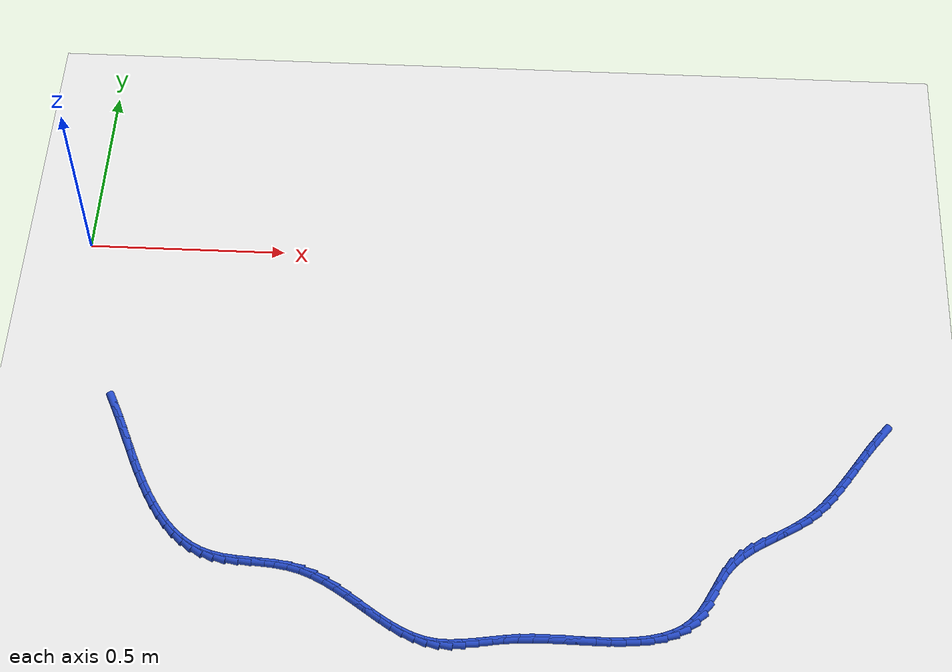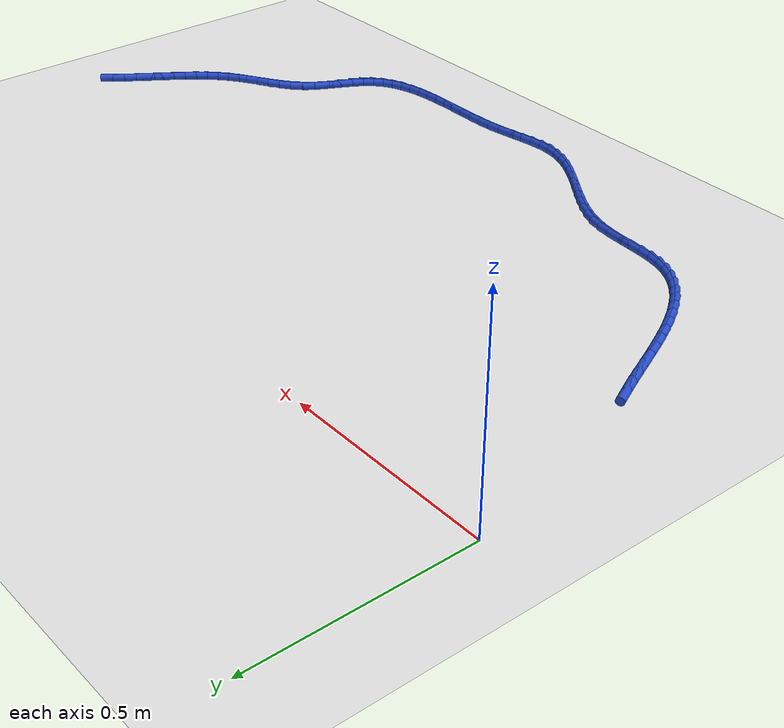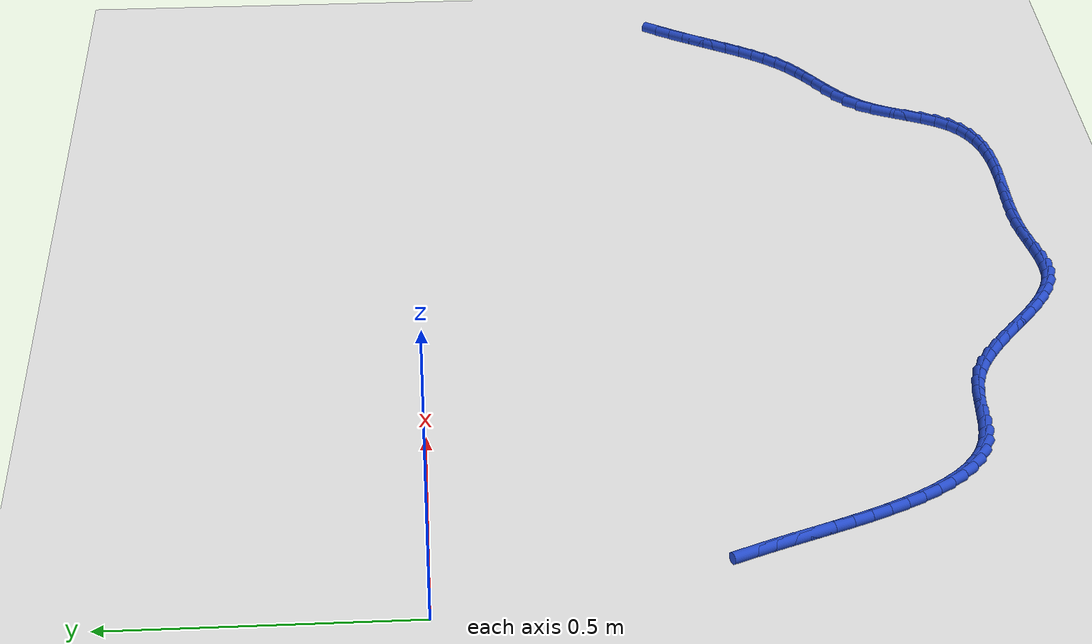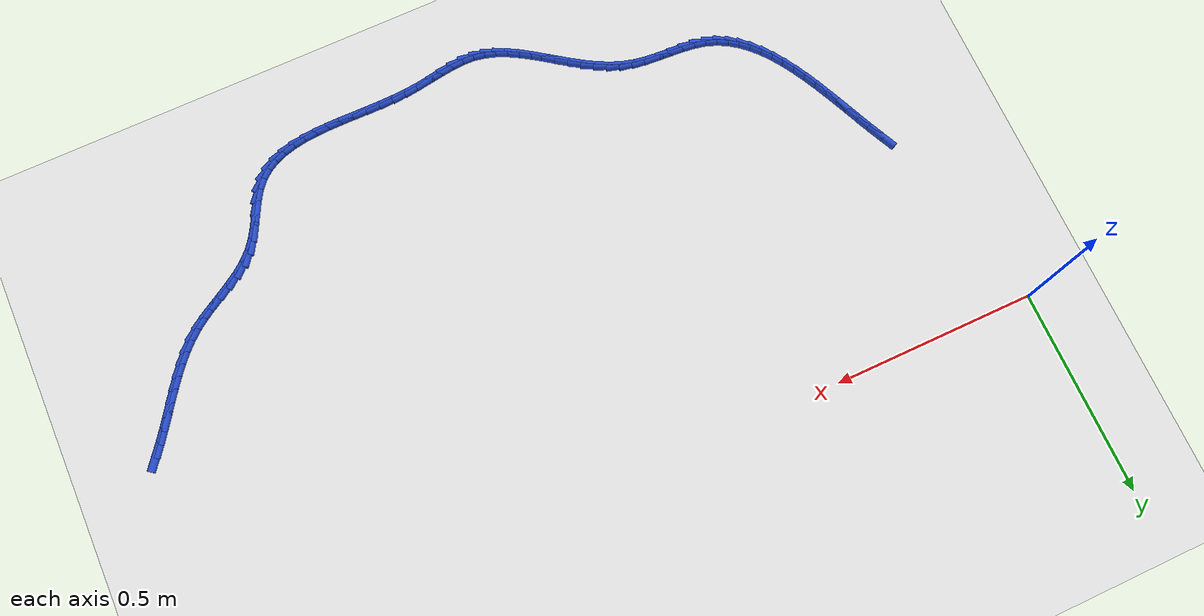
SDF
<sdf version="1.6">
 <world name="default">
  <model name="ground_plane">
   <static>1</static>
   <link name="link">
    <collision name="collision">
     <geometry><plane><normal>0 0 1</normal><size>100 100</size></plane></geometry>
     <surface><friction><ode><mu>100</mu><mu2>50</mu2></ode></friction></surface>
    </collision>
    <visual name="visual">
     <cast_shadows>0</cast_shadows>
     <geometry><plane><normal>0 0 1</normal><size>100 100</size></plane></geometry>
     <material>
      <script><uri>file://media/materials/scripts/gazebo.material</uri><name>Gazebo/WhiteGlow</name></script>
     </material>
    </visual>
   </link>
  </model>
  <model name="line">
   <link name="link_136">
    <pose>1.9928041549388718 -0.5000983421705477 0.01 0 1.57 0.9288535425664065</pose>
    <collision name="collision">
     <geometry><cylinder><radius>0.01</radius><length>0.08</length></cylinder></geometry>
    </collision>
    <visual name="visual">
     <material>
      <script><name>Gazebo/Blue</name><uri>file://media/materials/scripts/gazebo.material</uri></script>
     </material>
     <geometry><cylinder><radius>0.01</radius><length>0.08</length></cylinder></geometry>
    </visual>
   </link>
   <link name="link_137">
    <pose>1.9736009475559197 -0.5257859163488334 0.01 0 1.57 0.9602608134113997</pose>
    <collision name="collision">
     <geometry><cylinder><radius>0.01</radius><length>0.08</length></cylinder></geometry>
    </collision>
    <visual name="visual">
     <material>
      <script><name>Gazebo/Blue</name><uri>file://media/materials/scripts/gazebo.material</uri></script>
     </material>
     <geometry><cylinder><radius>0.01</radius><length>0.08</length></cylinder></geometry>
    </visual>
   </link>
   <link name="link_138">
    <pose>1.9554668538914555 -0.5517022692338159 0.01 0 1.57 0.9791331282496994</pose>
    <collision name="collision">
     <geometry><cylinder><radius>0.01</radius><length>0.08</length></cylinder></geometry>
    </collision>
    <visual name="visual">
     <material>
      <script><name>Gazebo/Blue</name><uri>file://media/materials/scripts/gazebo.material</uri></script>
     </material>
     <geometry><cylinder><radius>0.01</radius><length>0.08</length></cylinder></geometry>
    </visual>
   </link>
   <link name="link_139">
    <pose>1.9380492914748948 -0.5776225279422456 0.01 0 1.57 0.9849315929364691</pose>
    <collision name="collision">
     <geometry><cylinder><radius>0.01</radius><length>0.08</length></cylinder></geometry>
    </collision>
    <visual name="visual">
     <material>
      <script><name>Gazebo/Blue</name><uri>file://media/materials/scripts/gazebo.material</uri></script>
     </material>
     <geometry><cylinder><radius>0.01</radius><length>0.08</length></cylinder></geometry>
    </visual>
   </link>
   <link name="link_140">
    <pose>1.9209956778356505 -0.6033218195908734 0.01 0 1.57 0.9771509278971622</pose>
    <collision name="collision">
     <geometry><cylinder><radius>0.01</radius><length>0.08</length></cylinder></geometry>
    </collision>
    <visual name="visual">
     <material>
      <script><name>Gazebo/Blue</name><uri>file://media/materials/scripts/gazebo.material</uri></script>
     </material>
     <geometry><cylinder><radius>0.01</radius><length>0.08</length></cylinder></geometry>
    </visual>
   </link>
   <link name="link_141">
    <pose>1.9039534305031371 -0.6285752712964479 0.01 0 1.57 0.9552937803899582</pose>
    <collision name="collision">
     <geometry><cylinder><radius>0.01</radius><length>0.08</length></cylinder></geometry>
    </collision>
    <visual name="visual">
     <material>
      <script><name>Gazebo/Blue</name><uri>file://media/materials/scripts/gazebo.material</uri></script>
     </material>
     <geometry><cylinder><radius>0.01</radius><length>0.08</length></cylinder></geometry>
    </visual>
   </link>
   <link name="link_142">
    <pose>1.8865699670067686 -0.6531580101757198 0.01 0 1.57 0.9189212314913542</pose>
    <collision name="collision">
     <geometry><cylinder><radius>0.01</radius><length>0.08</length></cylinder></geometry>
    </collision>
    <visual name="visual">
     <material>
      <script><name>Gazebo/Blue</name><uri>file://media/materials/scripts/gazebo.material</uri></script>
     </material>
     <geometry><cylinder><radius>0.01</radius><length>0.08</length></cylinder></geometry>
    </visual>
   </link>
   <link name="link_143">
    <pose>1.8684927048759579 -0.6768451633454394 0.01 0 1.57 0.867797482358352</pose>
    <collision name="collision">
     <geometry><cylinder><radius>0.01</radius><length>0.08</length></cylinder></geometry>
    </collision>
    <visual name="visual">
     <material>
      <script><name>Gazebo/Blue</name><uri>file://media/materials/scripts/gazebo.material</uri></script>
     </material>
     <geometry><cylinder><radius>0.01</radius><length>0.08</length></cylinder></geometry>
    </visual>
   </link>
   <link name="link_144">
    <pose>1.8493690616401202 -0.6994118579223576 0.01 0 1.57 0.8021356955162451</pose>
    <collision name="collision">
     <geometry><cylinder><radius>0.01</radius><length>0.08</length></cylinder></geometry>
    </collision>
    <visual name="visual">
     <material>
      <script><name>Gazebo/Blue</name><uri>file://media/materials/scripts/gazebo.material</uri></script>
     </material>
     <geometry><cylinder><radius>0.01</radius><length>0.08</length></cylinder></geometry>
    </visual>
   </link>
   <link name="link_145">
    <pose>1.8288464548286694 -0.7206332210232231 0.01 0 1.57 0.7229161034929432</pose>
    <collision name="collision">
     <geometry><cylinder><radius>0.01</radius><length>0.08</length></cylinder></geometry>
    </collision>
    <visual name="visual">
     <material>
      <script><name>Gazebo/Blue</name><uri>file://media/materials/scripts/gazebo.material</uri></script>
     </material>
     <geometry><cylinder><radius>0.01</radius><length>0.08</length></cylinder></geometry>
    </visual>
   </link>
   <link name="link_146">
    <pose>1.8065723019710183 -0.7402843797647867 0.01 0 1.57 0.6355278843884544</pose>
    <collision name="collision">
     <geometry><cylinder><radius>0.01</radius><length>0.08</length></cylinder></geometry>
    </collision>
    <visual name="visual">
     <material>
      <script><name>Gazebo/Blue</name><uri>file://media/materials/scripts/gazebo.material</uri></script>
     </material>
     <geometry><cylinder><radius>0.01</radius><length>0.08</length></cylinder></geometry>
    </visual>
   </link>
   <link name="link_147">
    <pose>1.782273492528686 -0.7582075614470135 0.01 0 1.57 0.5714710603352663</pose>
    <collision name="collision">
     <geometry><cylinder><radius>0.01</radius><length>0.08</length></cylinder></geometry>
    </collision>
    <visual name="visual">
     <material>
      <script><name>Gazebo/Blue</name><uri>file://media/materials/scripts/gazebo.material</uri></script>
     </material>
     <geometry><cylinder><radius>0.01</radius><length>0.08</length></cylinder></geometry>
    </visual>
   </link>
   <link name="link_148">
    <pose>1.7563932055761489 -0.7748497749951807 0.01 0 1.57 0.5444184509288275</pose>
    <collision name="collision">
     <geometry><cylinder><radius>0.01</radius><length>0.08</length></cylinder></geometry>
    </collision>
    <visual name="visual">
     <material>
      <script><name>Gazebo/Blue</name><uri>file://media/materials/scripts/gazebo.material</uri></script>
     </material>
     <geometry><cylinder><radius>0.01</radius><length>0.08</length></cylinder></geometry>
    </visual>
   </link>
   <link name="link_149">
    <pose>1.7297541223830861 -0.7909784527363128 0.01 0 1.57 0.5525735734493316</pose>
    <collision name="collision">
     <geometry><cylinder><radius>0.01</radius><length>0.08</length></cylinder></geometry>
    </collision>
    <visual name="visual">
     <material>
      <script><name>Gazebo/Blue</name><uri>file://media/materials/scripts/gazebo.material</uri></script>
     </material>
     <geometry><cylinder><radius>0.01</radius><length>0.08</length></cylinder></geometry>
    </visual>
   </link>
   <link name="link_150">
    <pose>1.7031823940212656 -0.8073639566400148 0.01 0 1.57 0.5958839957332672</pose>
    <collision name="collision">
     <geometry><cylinder><radius>0.01</radius><length>0.08</length></cylinder></geometry>
    </collision>
    <visual name="visual">
     <material>
      <script><name>Gazebo/Blue</name><uri>file://media/materials/scripts/gazebo.material</uri></script>
     </material>
     <geometry><cylinder><radius>0.01</radius><length>0.08</length></cylinder></geometry>
    </visual>
   </link>
   <link name="link_151">
    <pose>1.677504171562459 -0.8247766486758924 0.01 0 1.57 0.6758442554312032</pose>
    <collision name="collision">
     <geometry><cylinder><radius>0.01</radius><length>0.08</length></cylinder></geometry>
    </collision>
    <visual name="visual">
     <material>
      <script><name>Gazebo/Blue</name><uri>file://media/materials/scripts/gazebo.material</uri></script>
     </material>
     <geometry><cylinder><radius>0.01</radius><length>0.08</length></cylinder></geometry>
    </visual>
   </link>
   <link name="link_152">
    <pose>1.6535456060784357 -0.8439868908135502 0.01 0 1.57 0.793857999983317</pose>
    <collision name="collision">
     <geometry><cylinder><radius>0.01</radius><length>0.08</length></cylinder></geometry>
    </collision>
    <visual name="visual">
     <material>
      <script><name>Gazebo/Blue</name><uri>file://media/materials/scripts/gazebo.material</uri></script>
     </material>
     <geometry><cylinder><radius>0.01</radius><length>0.08</length></cylinder></geometry>
    </visual>
   </link>
   <link name="link_153">
    <pose>1.6321328486409652 -0.8657650450225935 0.01 0 1.57 0.9419366793998585</pose>
    <collision name="collision">
     <geometry><cylinder><radius>0.01</radius><length>0.08</length></cylinder></geometry>
    </collision>
    <visual name="visual">
     <material>
      <script><name>Gazebo/Blue</name><uri>file://media/materials/scripts/gazebo.material</uri></script>
     </material>
     <geometry><cylinder><radius>0.01</radius><length>0.08</length></cylinder></geometry>
    </visual>
   </link>
   <link name="link_154">
    <pose>1.6139648335987058 -0.890742738472168 0.01 0 1.57 1.0567769502903093</pose>
    <collision name="collision">
     <geometry><cylinder><radius>0.01</radius><length>0.08</length></cylinder></geometry>
    </collision>
    <visual name="visual">
     <material>
      <script><name>Gazebo/Blue</name><uri>file://media/materials/scripts/gazebo.material</uri></script>
     </material>
     <geometry><cylinder><radius>0.01</radius><length>0.08</length></cylinder></geometry>
    </visual>
   </link>
   <link name="link_155">
    <pose>1.5984763828016586 -0.9181730343268891 0.01 0 1.57 1.109273959336759</pose>
    <collision name="collision">
     <geometry><cylinder><radius>0.01</radius><length>0.08</length></cylinder></geometry>
    </collision>
    <visual name="visual">
     <material>
      <script><name>Gazebo/Blue</name><uri>file://media/materials/scripts/gazebo.material</uri></script>
     </material>
     <geometry><cylinder><radius>0.01</radius><length>0.08</length></cylinder></geometry>
    </visual>
   </link>
   <link name="link_156">
    <pose>1.5843783719172109 -0.9465195041913805 0.01 0 1.57 1.10292078518504</pose>
    <collision name="collision">
     <geometry><cylinder><radius>0.01</radius><length>0.08</length></cylinder></geometry>
    </collision>
    <visual name="visual">
     <material>
      <script><name>Gazebo/Blue</name><uri>file://media/materials/scripts/gazebo.material</uri></script>
     </material>
     <geometry><cylinder><radius>0.01</radius><length>0.08</length></cylinder></geometry>
    </visual>
   </link>
   <link name="link_157">
    <pose>1.5703731311219316 -0.9742364004790885 0.01 0 1.57 1.033688389152382</pose>
    <collision name="collision">
     <geometry><cylinder><radius>0.01</radius><length>0.08</length></cylinder></geometry>
    </collision>
    <visual name="visual">
     <material>
      <script><name>Gazebo/Blue</name><uri>file://media/materials/scripts/gazebo.material</uri></script>
     </material>
     <geometry><cylinder><radius>0.01</radius><length>0.08</length></cylinder></geometry>
    </visual>
   </link>
   <link name="link_158">
    <pose>1.5551629905923885 -0.9997779756034559 0.01 0 1.57 0.8905519682226601</pose>
    <collision name="collision">
     <geometry><cylinder><radius>0.01</radius><length>0.08</length></cylinder></geometry>
    </collision>
    <visual name="visual">
     <material>
      <script><name>Gazebo/Blue</name><uri>file://media/materials/scripts/gazebo.material</uri></script>
     </material>
     <geometry><cylinder><radius>0.01</radius><length>0.08</length></cylinder></geometry>
    </visual>
   </link>
   <link name="link_159">
    <pose>1.5374792580412358 -1.0216349577578332 0.01 0 1.57 0.7049364314107741</pose>
    <collision name="collision">
     <geometry><cylinder><radius>0.01</radius><length>0.08</length></cylinder></geometry>
    </collision>
    <visual name="visual">
     <material>
      <script><name>Gazebo/Blue</name><uri>file://media/materials/scripts/gazebo.material</uri></script>
     </material>
     <geometry><cylinder><radius>0.01</radius><length>0.08</length></cylinder></geometry>
    </visual>
   </link>
   <link name="link_160">
    <pose>1.5167952711844506 -1.0392321132471005 0.01 0 1.57 0.5308745902917839</pose>
    <collision name="collision">
     <geometry><cylinder><radius>0.01</radius><length>0.08</length></cylinder></geometry>
    </collision>
    <visual name="visual">
     <material>
      <script><name>Gazebo/Blue</name><uri>file://media/materials/scripts/gazebo.material</uri></script>
     </material>
     <geometry><cylinder><radius>0.01</radius><length>0.08</length></cylinder></geometry>
    </visual>
   </link>
   <link name="link_161">
    <pose>1.4933709653189555 -1.052984346397177 0.01 0 1.57 0.38127957187426315</pose>
    <collision name="collision">
     <geometry><cylinder><radius>0.01</radius><length>0.08</length></cylinder></geometry>
    </collision>
    <visual name="visual">
     <material>
      <script><name>Gazebo/Blue</name><uri>file://media/materials/scripts/gazebo.material</uri></script>
     </material>
     <geometry><cylinder><radius>0.01</radius><length>0.08</length></cylinder></geometry>
    </visual>
   </link>
   <link name="link_162">
    <pose>1.4675041763004266 -1.063354269263006 0.01 0 1.57 0.259952628236516</pose>
    <collision name="collision">
     <geometry><cylinder><radius>0.01</radius><length>0.08</length></cylinder></geometry>
    </collision>
    <visual name="visual">
     <material>
      <script><name>Gazebo/Blue</name><uri>file://media/materials/scripts/gazebo.material</uri></script>
     </material>
     <geometry><cylinder><radius>0.01</radius><length>0.08</length></cylinder></geometry>
    </visual>
   </link>
   <link name="link_163">
    <pose>1.4394927399845443 -1.07080449389953 0.01 0 1.57 0.16569490078580784</pose>
    <collision name="collision">
     <geometry><cylinder><radius>0.01</radius><length>0.08</length></cylinder></geometry>
    </collision>
    <visual name="visual">
     <material>
      <script><name>Gazebo/Blue</name><uri>file://media/materials/scripts/gazebo.material</uri></script>
     </material>
     <geometry><cylinder><radius>0.01</radius><length>0.08</length></cylinder></geometry>
    </visual>
   </link>
   <link name="link_164">
    <pose>1.4096344922269841 -1.0757976323616922 0.01 0 1.57 0.09518835984697144</pose>
    <collision name="collision">
     <geometry><cylinder><radius>0.01</radius><length>0.08</length></cylinder></geometry>
    </collision>
    <visual name="visual">
     <material>
      <script><name>Gazebo/Blue</name><uri>file://media/materials/scripts/gazebo.material</uri></script>
     </material>
     <geometry><cylinder><radius>0.01</radius><length>0.08</length></cylinder></geometry>
    </visual>
   </link>
   <link name="link_165">
    <pose>1.3782272688834243 -1.0787962967044356 0.01 0 1.57 0.044883363472194</pose>
    <collision name="collision">
     <geometry><cylinder><radius>0.01</radius><length>0.08</length></cylinder></geometry>
    </collision>
    <visual name="visual">
     <material>
      <script><name>Gazebo/Blue</name><uri>file://media/materials/scripts/gazebo.material</uri></script>
     </material>
     <geometry><cylinder><radius>0.01</radius><length>0.08</length></cylinder></geometry>
    </visual>
   </link>
   <link name="link_166">
    <pose>1.3455689058095415 -1.0802630989827025 0.01 0 1.57 0.011827254271872123</pose>
    <collision name="collision">
     <geometry><cylinder><radius>0.01</radius><length>0.08</length></cylinder></geometry>
    </collision>
    <visual name="visual">
     <material>
      <script><name>Gazebo/Blue</name><uri>file://media/materials/scripts/gazebo.material</uri></script>
     </material>
     <geometry><cylinder><radius>0.01</radius><length>0.08</length></cylinder></geometry>
    </visual>
   </link>
   <link name="link_167">
    <pose>1.3119572388610157 -1.0806606512514367 0.01 0 1.57 -0.006101563243013844</pose>
    <collision name="collision">
     <geometry><cylinder><radius>0.01</radius><length>0.08</length></cylinder></geometry>
    </collision>
    <visual name="visual">
     <material>
      <script><name>Gazebo/Blue</name><uri>file://media/materials/scripts/gazebo.material</uri></script>
     </material>
     <geometry><cylinder><radius>0.01</radius><length>0.08</length></cylinder></geometry>
    </visual>
   </link>
   <link name="link_168">
    <pose>1.2776901038935227 -1.0804515655655804 0.01 0 1.57 -0.01019788359172847</pose>
    <collision name="collision">
     <geometry><cylinder><radius>0.01</radius><length>0.08</length></cylinder></geometry>
    </collision>
    <visual name="visual">
     <material>
      <script><name>Gazebo/Blue</name><uri>file://media/materials/scripts/gazebo.material</uri></script>
     </material>
     <geometry><cylinder><radius>0.01</radius><length>0.08</length></cylinder></geometry>
    </visual>
   </link>
   <link name="link_169">
    <pose>1.2430653367627402 -1.0800984539800766 0.01 0 1.57 -0.0009954116581599609</pose>
    <collision name="collision">
     <geometry><cylinder><radius>0.01</radius><length>0.08</length></cylinder></geometry>
    </collision>
    <visual name="visual">
     <material>
      <script><name>Gazebo/Blue</name><uri>file://media/materials/scripts/gazebo.material</uri></script>
     </material>
     <geometry><cylinder><radius>0.01</radius><length>0.08</length></cylinder></geometry>
    </visual>
   </link>
   <link name="link_170">
    <pose>1.2083807733243457 -1.0800639285498688 0.01 0 1.57 0.02167289422606916</pose>
    <collision name="collision">
     <geometry><cylinder><radius>0.01</radius><length>0.08</length></cylinder></geometry>
    </collision>
    <visual name="visual">
     <material>
      <script><name>Gazebo/Blue</name><uri>file://media/materials/scripts/gazebo.material</uri></script>
     </material>
     <geometry><cylinder><radius>0.01</radius><length>0.08</length></cylinder></geometry>
    </visual>
   </link>
   <link name="link_171">
    <pose>1.173934249434018 -1.080810601329899 0.01 0 1.57 0.05863060182466509</pose>
    <collision name="collision">
     <geometry><cylinder><radius>0.01</radius><length>0.08</length></cylinder></geometry>
    </collision>
    <visual name="visual">
     <material>
      <script><name>Gazebo/Blue</name><uri>file://media/materials/scripts/gazebo.material</uri></script>
     </material>
     <geometry><cylinder><radius>0.01</radius><length>0.08</length></cylinder></geometry>
    </visual>
   </link>
   <link name="link_172">
    <pose>1.140023600947434 -1.0828010843751112 0.01 0 1.57 0.10956768799718099</pose>
    <collision name="collision">
     <geometry><cylinder><radius>0.01</radius><length>0.08</length></cylinder></geometry>
    </collision>
    <visual name="visual">
     <material>
      <script><name>Gazebo/Blue</name><uri>file://media/materials/scripts/gazebo.material</uri></script>
     </material>
     <geometry><cylinder><radius>0.01</radius><length>0.08</length></cylinder></geometry>
    </visual>
   </link>
   <link name="link_173">
    <pose>1.106934719818722 -1.086441134612814 0.01 0 1.57 0.15004925030274124</pose>
    <collision name="collision">
     <geometry><cylinder><radius>0.01</radius><length>0.08</length></cylinder></geometry>
    </collision>
    <visual name="visual">
     <material>
      <script><name>Gazebo/Blue</name><uri>file://media/materials/scripts/gazebo.material</uri></script>
     </material>
     <geometry><cylinder><radius>0.01</radius><length>0.08</length></cylinder></geometry>
    </visual>
   </link>
   <link name="link_174">
    <pose>1.074778338112129 -1.0913027162725066 0.01 0 1.57 0.15935357032561798</pose>
    <collision name="collision">
     <geometry><cylinder><radius>0.01</radius><length>0.08</length></cylinder></geometry>
    </collision>
    <visual name="visual">
     <material>
      <script><name>Gazebo/Blue</name><uri>file://media/materials/scripts/gazebo.material</uri></script>
     </material>
     <geometry><cylinder><radius>0.01</radius><length>0.08</length></cylinder></geometry>
    </visual>
   </link>
   <link name="link_175">
    <pose>1.0435321454723427 -1.0963244876481621 0.01 0 1.57 0.13438261621100972</pose>
    <collision name="collision">
     <geometry><cylinder><radius>0.01</radius><length>0.08</length></cylinder></geometry>
    </collision>
    <visual name="visual">
     <material>
      <script><name>Gazebo/Blue</name><uri>file://media/materials/scripts/gazebo.material</uri></script>
     </material>
     <geometry><cylinder><radius>0.01</radius><length>0.08</length></cylinder></geometry>
    </visual>
   </link>
   <link name="link_176">
    <pose>1.0131705113809764 -1.100429302458112 0.01 0 1.57 0.07142130694898821</pose>
    <collision name="collision">
     <geometry><cylinder><radius>0.01</radius><length>0.08</length></cylinder></geometry>
    </collision>
    <visual name="visual">
     <material>
      <script><name>Gazebo/Blue</name><uri>file://media/materials/scripts/gazebo.material</uri></script>
     </material>
     <geometry><cylinder><radius>0.01</radius><length>0.08</length></cylinder></geometry>
    </visual>
   </link>
   <link name="link_177">
    <pose>0.9836678053196402 -1.1025400144206876 0.01 0 1.57 -0.03349137816820349</pose>
    <collision name="collision">
     <geometry><cylinder><radius>0.01</radius><length>0.08</length></cylinder></geometry>
    </collision>
    <visual name="visual">
     <material>
      <script><name>Gazebo/Blue</name><uri>file://media/materials/scripts/gazebo.material</uri></script>
     </material>
     <geometry><cylinder><radius>0.01</radius><length>0.08</length></cylinder></geometry>
    </visual>
   </link>
   <link name="link_178">
    <pose>0.9549983967699455 -1.1015794772542193 0.01 0 1.57 -0.17712617902221756</pose>
    <collision name="collision">
     <geometry><cylinder><radius>0.01</radius><length>0.08</length></cylinder></geometry>
    </collision>
    <visual name="visual">
     <material>
      <script><name>Gazebo/Blue</name><uri>file://media/materials/scripts/gazebo.material</uri></script>
     </material>
     <geometry><cylinder><radius>0.01</radius><length>0.08</length></cylinder></geometry>
    </visual>
   </link>
   <link name="link_179">
    <pose>0.9271275577052115 -1.0965905387799582 0.01 0 1.57 -0.31675221406720977</pose>
    <collision name="collision">
     <geometry><cylinder><radius>0.01</radius><length>0.08</length></cylinder></geometry>
    </collision>
    <visual name="visual">
     <material>
      <script><name>Gazebo/Blue</name><uri>file://media/materials/scripts/gazebo.material</uri></script>
     </material>
     <geometry><cylinder><radius>0.01</radius><length>0.08</length></cylinder></geometry>
    </visual>
   </link>
   <link name="link_180">
    <pose>0.8999399892757761 -1.0876787579830263 0.01 0 1.57 -0.4283380901225261</pose>
    <collision name="collision">
     <geometry><cylinder><radius>0.01</radius><length>0.08</length></cylinder></geometry>
    </collision>
    <visual name="visual">
     <material>
      <script><name>Gazebo/Blue</name><uri>file://media/materials/scripts/gazebo.material</uri></script>
     </material>
     <geometry><cylinder><radius>0.01</radius><length>0.08</length></cylinder></geometry>
    </visual>
   </link>
   <link name="link_181">
    <pose>0.8732783110836506 -1.0755047400742466 0.01 0 1.57 -0.5118319708901158</pose>
    <collision name="collision">
     <geometry><cylinder><radius>0.01</radius><length>0.08</length></cylinder></geometry>
    </collision>
    <visual name="visual">
     <material>
      <script><name>Gazebo/Blue</name><uri>file://media/materials/scripts/gazebo.material</uri></script>
     </material>
     <geometry><cylinder><radius>0.01</radius><length>0.08</length></cylinder></geometry>
    </visual>
   </link>
   <link name="link_182">
    <pose>0.846984776760144 -1.060733917336282 0.01 0 1.57 -0.5695576049153042</pose>
    <collision name="collision">
     <geometry><cylinder><radius>0.01</radius><length>0.08</length></cylinder></geometry>
    </collision>
    <visual name="visual">
     <material>
      <script><name>Gazebo/Blue</name><uri>file://media/materials/scripts/gazebo.material</uri></script>
     </material>
     <geometry><cylinder><radius>0.01</radius><length>0.08</length></cylinder></geometry>
    </visual>
   </link>
   <link name="link_183">
    <pose>0.8209016399365657 -1.044031722051796 0.01 0 1.57 -0.6041677479081098</pose>
    <collision name="collision">
     <geometry><cylinder><radius>0.01</radius><length>0.08</length></cylinder></geometry>
    </collision>
    <visual name="visual">
     <material>
      <script><name>Gazebo/Blue</name><uri>file://media/materials/scripts/gazebo.material</uri></script>
     </material>
     <geometry><cylinder><radius>0.01</radius><length>0.08</length></cylinder></geometry>
    </visual>
   </link>
   <link name="link_184">
    <pose>0.7948711542442249 -1.0260635865034526 0.01 0 1.57 -0.6177207768934482</pose>
    <collision name="collision">
     <geometry><cylinder><radius>0.01</radius><length>0.08</length></cylinder></geometry>
    </collision>
    <visual name="visual">
     <material>
      <script><name>Gazebo/Blue</name><uri>file://media/materials/scripts/gazebo.material</uri></script>
     </material>
     <geometry><cylinder><radius>0.01</radius><length>0.08</length></cylinder></geometry>
    </visual>
   </link>
   <link name="link_185">
    <pose>0.7687355733144323 -1.0074949429739155 0.01 0 1.57 -0.6113567852888363</pose>
    <collision name="collision">
     <geometry><cylinder><radius>0.01</radius><length>0.08</length></cylinder></geometry>
    </collision>
    <visual name="visual">
     <material>
      <script><name>Gazebo/Blue</name><uri>file://media/materials/scripts/gazebo.material</uri></script>
     </material>
     <geometry><cylinder><radius>0.01</radius><length>0.08</length></cylinder></geometry>
    </visual>
   </link>
   <link name="link_186">
    <pose>0.7423371507784965 -0.9889912237458479 0.01 0 1.57 -0.5852618966739149</pose>
    <collision name="collision">
     <geometry><cylinder><radius>0.01</radius><length>0.08</length></cylinder></geometry>
    </collision>
    <visual name="visual">
     <material>
      <script><name>Gazebo/Blue</name><uri>file://media/materials/scripts/gazebo.material</uri></script>
     </material>
     <geometry><cylinder><radius>0.01</radius><length>0.08</length></cylinder></geometry>
    </visual>
   </link>
   <link name="link_187">
    <pose>0.7155181402677271 -0.9712178611019135 0.01 0 1.57 -0.5387852518693869</pose>
    <collision name="collision">
     <geometry><cylinder><radius>0.01</radius><length>0.08</length></cylinder></geometry>
    </collision>
    <visual name="visual">
     <material>
      <script><name>Gazebo/Blue</name><uri>file://media/materials/scripts/gazebo.material</uri></script>
     </material>
     <geometry><cylinder><radius>0.01</radius><length>0.08</length></cylinder></geometry>
    </visual>
   </link>
   <link name="link_188">
    <pose>0.6881207954134327 -0.9548402873247757 0.01 0 1.57 -0.4707211241592046</pose>
    <collision name="collision">
     <geometry><cylinder><radius>0.01</radius><length>0.08</length></cylinder></geometry>
    </collision>
    <visual name="visual">
     <material>
      <script><name>Gazebo/Blue</name><uri>file://media/materials/scripts/gazebo.material</uri></script>
     </material>
     <geometry><cylinder><radius>0.01</radius><length>0.08</length></cylinder></geometry>
    </visual>
   </link>
   <link name="link_189">
    <pose>0.6599873698469242 -0.940523934697098 0.01 0 1.57 -0.37987655275723065</pose>
    <collision name="collision">
     <geometry><cylinder><radius>0.01</radius><length>0.08</length></cylinder></geometry>
    </collision>
    <visual name="visual">
     <material>
      <script><name>Gazebo/Blue</name><uri>file://media/materials/scripts/gazebo.material</uri></script>
     </material>
     <geometry><cylinder><radius>0.01</radius><length>0.08</length></cylinder></geometry>
    </visual>
   </link>
   <link name="link_190">
    <pose>0.6309601171995106 -0.9289342355015449 0.01 0 1.57 -0.2671995135779353</pose>
    <collision name="collision">
     <geometry><cylinder><radius>0.01</radius><length>0.08</length></cylinder></geometry>
    </collision>
    <visual name="visual">
     <material>
      <script><name>Gazebo/Blue</name><uri>file://media/materials/scripts/gazebo.material</uri></script>
     </material>
     <geometry><cylinder><radius>0.01</radius><length>0.08</length></cylinder></geometry>
    </visual>
   </link>
   <link name="link_191">
    <pose>0.600892857549977 -0.9207034592833011 0.01 0 1.57 -0.16259439007437315</pose>
    <collision name="collision">
     <geometry><cylinder><radius>0.01</radius><length>0.08</length></cylinder></geometry>
    </collision>
    <visual name="visual">
     <material>
      <script><name>Gazebo/Blue</name><uri>file://media/materials/scripts/gazebo.material</uri></script>
     </material>
     <geometry><cylinder><radius>0.01</radius><length>0.08</length></cylinder></geometry>
    </visual>
   </link>
   <link name="link_192">
    <pose>0.5699321377046263 -0.9156245842115629 0.01 0 1.57 -0.09582743001127124</pose>
    <collision name="collision">
     <geometry><cylinder><radius>0.01</radius><length>0.08</length></cylinder></geometry>
    </collision>
    <visual name="visual">
     <material>
      <script><name>Gazebo/Blue</name><uri>file://media/materials/scripts/gazebo.material</uri></script>
     </material>
     <geometry><cylinder><radius>0.01</radius><length>0.08</length></cylinder></geometry>
    </visual>
   </link>
   <link name="link_193">
    <pose>0.5385328798998733 -0.912606429905149 0.01 0 1.57 -0.06655375705515529</pose>
    <collision name="collision">
     <geometry><cylinder><radius>0.01</radius><length>0.08</length></cylinder></geometry>
    </collision>
    <visual name="visual">
     <material>
      <script><name>Gazebo/Blue</name><uri>file://media/materials/scripts/gazebo.material</uri></script>
     </material>
     <geometry><cylinder><radius>0.01</radius><length>0.08</length></cylinder></geometry>
    </visual>
   </link>
   <link name="link_194">
    <pose>0.5071647052213105 -0.9105156721805061 0.01 0 1.57 -0.0742678657169629</pose>
    <collision name="collision">
     <geometry><cylinder><radius>0.01</radius><length>0.08</length></cylinder></geometry>
    </collision>
    <visual name="visual">
     <material>
      <script><name>Gazebo/Blue</name><uri>file://media/materials/scripts/gazebo.material</uri></script>
     </material>
     <geometry><cylinder><radius>0.01</radius><length>0.08</length></cylinder></geometry>
    </visual>
   </link>
   <link name="link_195">
    <pose>0.47629723475453145 -0.9082189868540816 0.01 0 1.57 -0.12102055633174377</pose>
    <collision name="collision">
     <geometry><cylinder><radius>0.01</radius><length>0.08</length></cylinder></geometry>
    </collision>
    <visual name="visual">
     <material>
      <script><name>Gazebo/Blue</name><uri>file://media/materials/scripts/gazebo.material</uri></script>
     </material>
     <geometry><cylinder><radius>0.01</radius><length>0.08</length></cylinder></geometry>
    </visual>
   </link>
   <link name="link_196">
    <pose>0.4464000895851292 -0.9045830497423217 0.01 0 1.57 -0.2114474907494559</pose>
    <collision name="collision">
     <geometry><cylinder><radius>0.01</radius><length>0.08</length></cylinder></geometry>
    </collision>
    <visual name="visual">
     <material>
      <script><name>Gazebo/Blue</name><uri>file://media/materials/scripts/gazebo.material</uri></script>
     </material>
     <geometry><cylinder><radius>0.01</radius><length>0.08</length></cylinder></geometry>
    </visual>
   </link>
   <link name="link_197">
    <pose>0.4179428907986967 -0.8984745366616738 0.01 0 1.57 -0.3451129519861894</pose>
    <collision name="collision">
     <geometry><cylinder><radius>0.01</radius><length>0.08</length></cylinder></geometry>
    </collision>
    <visual name="visual">
     <material>
      <script><name>Gazebo/Blue</name><uri>file://media/materials/scripts/gazebo.material</uri></script>
     </material>
     <geometry><cylinder><radius>0.01</radius><length>0.08</length></cylinder></geometry>
    </visual>
   </link>
   <link name="link_198">
    <pose>0.3913324637250629 -0.8889080858304866 0.01 0 1.57 -0.4860614150776514</pose>
    <collision name="collision">
     <geometry><cylinder><radius>0.01</radius><length>0.08</length></cylinder></geometry>
    </collision>
    <visual name="visual">
     <material>
      <script><name>Gazebo/Blue</name><uri>file://media/materials/scripts/gazebo.material</uri></script>
     </material>
     <geometry><cylinder><radius>0.01</radius><length>0.08</length></cylinder></geometry>
    </visual>
   </link>
   <link name="link_199">
    <pose>0.36658005815833994 -0.8758304097081903 0.01 0 1.57 -0.6152112973572519</pose>
    <collision name="collision">
     <geometry><cylinder><radius>0.01</radius><length>0.08</length></cylinder></geometry>
    </collision>
    <visual name="visual">
     <material>
      <script><name>Gazebo/Blue</name><uri>file://media/materials/scripts/gazebo.material</uri></script>
     </material>
     <geometry><cylinder><radius>0.01</radius><length>0.08</length></cylinder></geometry>
    </visual>
   </link>
   <link name="link_200">
    <pose>0.3435432875233421 -0.8595502262105338 0.01 0 1.57 -0.7290881639294428</pose>
    <collision name="collision">
     <geometry><cylinder><radius>0.01</radius><length>0.08</length></cylinder></geometry>
    </collision>
    <visual name="visual">
     <material>
      <script><name>Gazebo/Blue</name><uri>file://media/materials/scripts/gazebo.material</uri></script>
     </material>
     <geometry><cylinder><radius>0.01</radius><length>0.08</length></cylinder></geometry>
    </visual>
   </link>
   <link name="link_201">
    <pose>0.3220794244998399 -0.8403770561332473 0.01 0 1.57 -0.8266033506553508</pose>
    <collision name="collision">
     <geometry><cylinder><radius>0.01</radius><length>0.08</length></cylinder></geometry>
    </collision>
    <visual name="visual">
     <material>
      <script><name>Gazebo/Blue</name><uri>file://media/materials/scripts/gazebo.material</uri></script>
     </material>
     <geometry><cylinder><radius>0.01</radius><length>0.08</length></cylinder></geometry>
    </visual>
   </link>
   <link name="link_202">
    <pose>0.30204574176760496 -0.8186204202720616 0.01 0 1.57 -0.9083085443107056</pose>
    <collision name="collision">
     <geometry><cylinder><radius>0.01</radius><length>0.08</length></cylinder></geometry>
    </collision>
    <visual name="visual">
     <material>
      <script><name>Gazebo/Blue</name><uri>file://media/materials/scripts/gazebo.material</uri></script>
     </material>
     <geometry><cylinder><radius>0.01</radius><length>0.08</length></cylinder></geometry>
    </visual>
   </link>
   <link name="link_203">
    <pose>0.28329951200640746 -0.7945898394227053 0.01 0 1.57 -0.9755978365719875</pose>
    <collision name="collision">
     <geometry><cylinder><radius>0.01</radius><length>0.08</length></cylinder></geometry>
    </collision>
    <visual name="visual">
     <material>
      <script><name>Gazebo/Blue</name><uri>file://media/materials/scripts/gazebo.material</uri></script>
     </material>
     <geometry><cylinder><radius>0.01</radius><length>0.08</length></cylinder></geometry>
    </visual>
   </link>
   <link name="link_204">
    <pose>0.2656980078960183 -0.7685948343809093 0.01 0 1.57 -1.0301226171343234</pose>
    <collision name="collision">
     <geometry><cylinder><radius>0.01</radius><length>0.08</length></cylinder></geometry>
    </collision>
    <visual name="visual">
     <material>
      <script><name>Gazebo/Blue</name><uri>file://media/materials/scripts/gazebo.material</uri></script>
     </material>
     <geometry><cylinder><radius>0.01</radius><length>0.08</length></cylinder></geometry>
    </visual>
   </link>
   <link name="link_205">
    <pose>0.24909850211620788 -0.7409449259424026 0.01 0 1.57 -1.0734553707188368</pose>
    <collision name="collision">
     <geometry><cylinder><radius>0.01</radius><length>0.08</length></cylinder></geometry>
    </collision>
    <visual name="visual">
     <material>
      <script><name>Gazebo/Blue</name><uri>file://media/materials/scripts/gazebo.material</uri></script>
     </material>
     <geometry><cylinder><radius>0.01</radius><length>0.08</length></cylinder></geometry>
    </visual>
   </link>
   <link name="link_206">
    <pose>0.2333582673467468 -0.7119496349029146 0.01 0 1.57 -1.1069325747795706</pose>
    <collision name="collision">
     <geometry><cylinder><radius>0.01</radius><length>0.08</length></cylinder></geometry>
    </collision>
    <visual name="visual">
     <material>
      <script><name>Gazebo/Blue</name><uri>file://media/materials/scripts/gazebo.material</uri></script>
     </material>
     <geometry><cylinder><radius>0.01</radius><length>0.08</length></cylinder></geometry>
    </visual>
   </link>
   <link name="link_207">
    <pose>0.21833457626740657 -0.6819184820581767 0.01 0 1.57 -1.1315991565905028</pose>
    <collision name="collision">
     <geometry><cylinder><radius>0.01</radius><length>0.08</length></cylinder></geometry>
    </collision>
    <visual name="visual">
     <material>
      <script><name>Gazebo/Blue</name><uri>file://media/materials/scripts/gazebo.material</uri></script>
     </material>
     <geometry><cylinder><radius>0.01</radius><length>0.08</length></cylinder></geometry>
    </visual>
   </link>
   <link name="link_208">
    <pose>0.20388470155795738 -0.6511609882039181 0.01 0 1.57 -1.1482000035882038</pose>
    <collision name="collision">
     <geometry><cylinder><radius>0.01</radius><length>0.08</length></cylinder></geometry>
    </collision>
    <visual name="visual">
     <material>
      <script><name>Gazebo/Blue</name><uri>file://media/materials/scripts/gazebo.material</uri></script>
     </material>
     <geometry><cylinder><radius>0.01</radius><length>0.08</length></cylinder></geometry>
    </visual>
   </link>
   <link name="link_209">
    <pose>0.18986591589817012 -0.6199866741358685 0.01 0 1.57 -1.1571866468229555</pose>
    <collision name="collision">
     <geometry><cylinder><radius>0.01</radius><length>0.08</length></cylinder></geometry>
    </collision>
    <visual name="visual">
     <material>
      <script><name>Gazebo/Blue</name><uri>file://media/materials/scripts/gazebo.material</uri></script>
     </material>
     <geometry><cylinder><radius>0.01</radius><length>0.08</length></cylinder></geometry>
    </visual>
   </link>
   <link name="link_210">
    <pose>0.176135491967815 -0.5887050606497568 0.01 0 1.57 -1.1587220171708739</pose>
    <collision name="collision">
     <geometry><cylinder><radius>0.01</radius><length>0.08</length></cylinder></geometry>
    </collision>
    <visual name="visual">
     <material>
      <script><name>Gazebo/Blue</name><uri>file://media/materials/scripts/gazebo.material</uri></script>
     </material>
     <geometry><cylinder><radius>0.01</radius><length>0.08</length></cylinder></geometry>
    </visual>
   </link>
   <link name="link_211">
    <pose>0.16255070244666353 -0.5576256685413147 0.01 0 1.57 -1.1526741651988994</pose>
    <collision name="collision">
     <geometry><cylinder><radius>0.01</radius><length>0.08</length></cylinder></geometry>
    </collision>
    <visual name="visual">
     <material>
      <script><name>Gazebo/Blue</name><uri>file://media/materials/scripts/gazebo.material</uri></script>
     </material>
     <geometry><cylinder><radius>0.01</radius><length>0.08</length></cylinder></geometry>
    </visual>
   </link>
   <link name="link_212">
    <pose>0.1489688200144861 -0.5270580186062711 0.01 0 1.57 -1.1396322511574628</pose>
    <collision name="collision">
     <geometry><cylinder><radius>0.01</radius><length>0.08</length></cylinder></geometry>
    </collision>
    <visual name="visual">
     <material>
      <script><name>Gazebo/Blue</name><uri>file://media/materials/scripts/gazebo.material</uri></script>
     </material>
     <geometry><cylinder><radius>0.01</radius><length>0.08</length></cylinder></geometry>
    </visual>
   </link>
   <link name="link_213">
    <pose>0.13526919751062552 -0.4972782177828557 0.01 0 1.57 -1.1282048350001714</pose>
    <collision name="collision">
     <geometry><cylinder><radius>0.01</radius><length>0.08</length></cylinder></geometry>
    </collision>
    <visual name="visual">
     <material>
      <script><name>Gazebo/Blue</name><uri>file://media/materials/scripts/gazebo.material</uri></script>
     </material>
     <geometry><cylinder><radius>0.01</radius><length>0.08</length></cylinder></geometry>
    </visual>
   </link>
  </model>
 </world>
</sdf>
